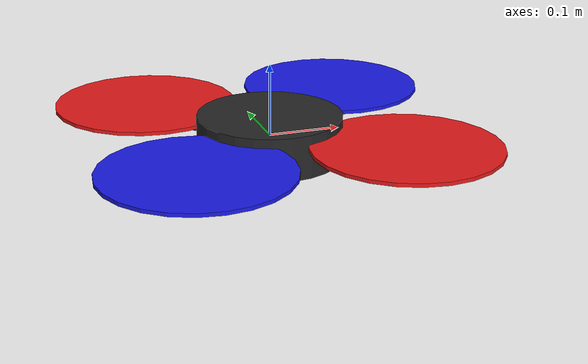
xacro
<?xml version="1.0"?>
<robot xmlns:xacro="http://www.ros.org/wiki/xacro">

  <!-- === Dimensions & mass === -->
  <xacro:property name="arm_length"  value="0.20"/>
  <xacro:property name="rotor_xy"    value="0.141"/>  <!-- arm_length * cos(45°) -->
  <xacro:property name="rotor_z"     value="0.015"/>  <!-- slightly above body center -->
  <xacro:property name="body_mass"   value="1.5"/>
  <xacro:property name="rotor_mass"  value="0.005"/>

  <!-- === Base body (central hub + 4 arms as visuals) === -->
  <link name="drone_base_link">

    <!-- Central hub -->
    <visual>
      <origin xyz="0 0 0" rpy="0 0 0"/>
      <geometry><cylinder radius="0.10" length="0.06"/></geometry>
      <material name="drone_body">
        <color rgba="0.15 0.15 0.15 1.0"/>
      </material>
    </visual>

    <!-- Arm 0 : center → front-left  (NW, +x +y, 45°) -->
    <visual>
      <origin xyz="${rotor_xy/2} ${rotor_xy/2} 0" rpy="0 0 ${pi/4}"/>
      <geometry><box size="${arm_length * 1.414} 0.018 0.018"/></geometry>
      <material name="drone_arm"><color rgba="0.20 0.20 0.20 1.0"/></material>
    </visual>
    <!-- Arm 1 : center → front-right (NE, +x -y, -45°) -->
    <visual>
      <origin xyz="${rotor_xy/2} ${-rotor_xy/2} 0" rpy="0 0 ${-pi/4}"/>
      <geometry><box size="${arm_length * 1.414} 0.018 0.018"/></geometry>
      <material name="drone_arm"/>
    </visual>
    <!-- Arm 2 : center → back-left   (SW, -x +y, 135°) -->
    <visual>
      <origin xyz="${-rotor_xy/2} ${rotor_xy/2} 0" rpy="0 0 ${3*pi/4}"/>
      <geometry><box size="${arm_length * 1.414} 0.018 0.018"/></geometry>
      <material name="drone_arm"/>
    </visual>
    <!-- Arm 3 : center → back-right  (SE, -x -y, -135°) -->
    <visual>
      <origin xyz="${-rotor_xy/2} ${-rotor_xy/2} 0" rpy="0 0 ${-3*pi/4}"/>
      <geometry><box size="${arm_length * 1.414} 0.018 0.018"/></geometry>
      <material name="drone_arm"/>
    </visual>

    <collision>
      <origin xyz="0 0 0" rpy="0 0 0"/>
      <geometry><cylinder radius="0.10" length="0.06"/></geometry>
    </collision>

    <inertial>
      <mass value="${body_mass}"/>
      <!-- Empirically validated inertia for a 1.5 kg quadrotor (Gazebo X3 class) -->
      <inertia ixx="0.029125" ixy="0" ixz="0"
               iyy="0.029125" iyz="0"
               izz="0.055225"/>
    </inertial>
  </link>

  <!-- === Rotor macro (continuous joint, thin disc) === -->
  <xacro:macro name="rotor" params="id x y z color_rgba">
    <joint name="drone_rotor_${id}_joint" type="continuous">
      <parent link="drone_base_link"/>
      <child  link="drone_rotor_${id}"/>
      <origin xyz="${x} ${y} ${z}" rpy="0 0 0"/>
      <axis   xyz="0 0 1"/>
      <limit  effort="1000" velocity="838"/>
      <dynamics damping="0.004" friction="0.0"/>
    </joint>

    <link name="drone_rotor_${id}">
      <visual>
        <origin xyz="0 0 0" rpy="0 0 0"/>
        <geometry><cylinder radius="0.128" length="0.005"/></geometry>
        <material name="rotor_mat_${id}">
          <color rgba="${color_rgba}"/>
        </material>
      </visual>
      <collision>
        <origin xyz="0 0 0" rpy="0 0 0"/>
        <geometry><cylinder radius="0.128" length="0.005"/></geometry>
      </collision>
      <inertial>
        <mass value="${rotor_mass}"/>
        <inertia ixx="1.75e-5" ixy="0" ixz="0"
                 iyy="1.75e-5" iyz="0"
                 izz="3.50e-5"/>
      </inertial>
    </link>
  </xacro:macro>

  <xacro:rotor id="0" x="${rotor_xy}"  y="${rotor_xy}"  z="${rotor_z}" color_rgba="0.1 0.1 0.9 1.0"/>
  <xacro:rotor id="1" x="${rotor_xy}"  y="${-rotor_xy}" z="${rotor_z}" color_rgba="0.9 0.1 0.1 1.0"/>
  <xacro:rotor id="2" x="${-rotor_xy}" y="${rotor_xy}"  z="${rotor_z}" color_rgba="0.9 0.1 0.1 1.0"/>
  <xacro:rotor id="3" x="${-rotor_xy}" y="${-rotor_xy}" z="${rotor_z}" color_rgba="0.1 0.1 0.9 1.0"/>

</robot>
